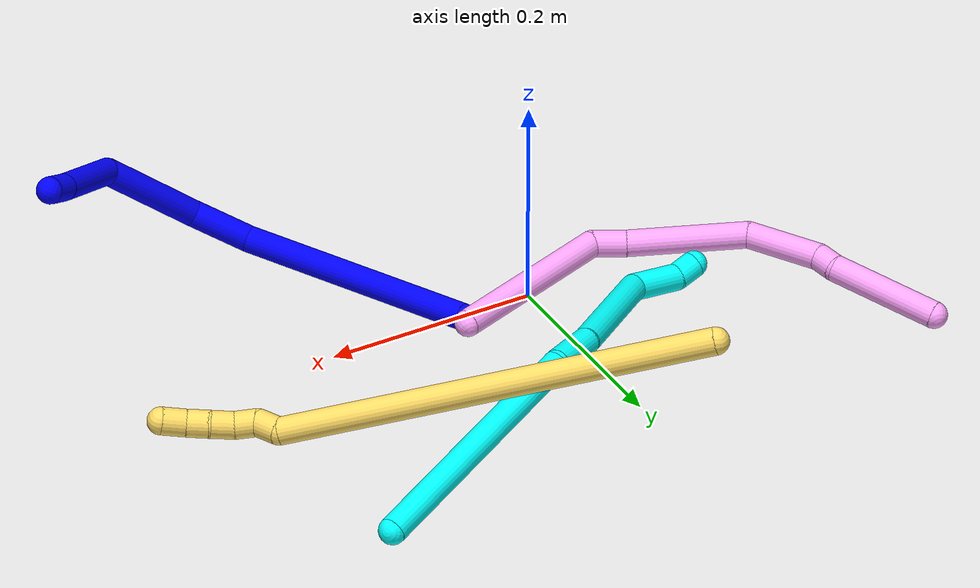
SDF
<sdf version="1.7">
 <world name="default">
  <model name="photoneo_s_sensor">
   <static>1</static>
   <pose>0 0 2 1.57079 1.57079 3.14159</pose>
   <link name="link">
    <inertial><mass>0.1</mass></inertial>
    <sensor name="sensor" type="depth">
     <update_rate>30</update_rate>
     <camera>
      <horizontal_fov>1.22</horizontal_fov>
      <image><width>1920</width><height>1200</height><format>B8G8R8</format></image>
      <clip><near>0.1</near><far>4</far></clip>
      <depth_camera><output>points</output></depth_camera>
     </camera>
     <plugin name="camera_plugin" filename="libgazebo_ros_depth_camera.so">
      <baseline>0.2</baseline>
      <alwaysOn>1</alwaysOn>
      <updateRate>0.0</updateRate>
      <cameraName>camera_ir</cameraName>
      <imageTopicName>/camera/color/image_raw</imageTopicName>
      <cameraInfoTopicName>/camera/color/camera_info</cameraInfoTopicName>
      <depthImageTopicName>/camera/depth/image_raw</depthImageTopicName>
      <depthImageCameraInfoTopicName>/camera/depth/camera_info</depthImageCameraInfoTopicName>
      <pointCloudTopicName>/camera/depth/points</pointCloudTopicName>
      <frameName>fr_optical</frameName>
      <pointCloudCutoff>0.1</pointCloudCutoff>
      <pointCloudCutoffMax>2.0</pointCloudCutoffMax>
      <distortionK1>0</distortionK1>
      <distortionK2>0</distortionK2>
      <distortionK3>0</distortionK3>
      <distortionT1>0</distortionT1>
      <distortionT2>0</distortionT2>
      <CxPrime>0</CxPrime>
      <Cx>0</Cx>
      <Cy>0</Cy>
      <focalLength>0</focalLength>
      <hackBaseline>0</hackBaseline>
     </plugin>
    </sensor>
   </link>
  </model>
  <model name="bin">
   <static>1</static>
   <link name="bottom">
    <collision name="collision-bottom">
     <pose>0 0 -0.01 0 -0 0</pose>
     <geometry><box><size>0.8 0.6 0.02</size></box></geometry>
     <surface>
      <friction><ode><mu>100</mu><mu2>100</mu2></ode></friction>
      <contact><collide_bitmask>65535</collide_bitmask></contact>
     </surface>
    </collision>
   </link>
   <link name="west_wall">
    <collision name="collision-west_wall">
     <pose>-0.41 0 0.1 0 -0 0</pose>
     <geometry><box><size>0.02 0.6 0.2</size></box></geometry>
     <surface>
      <friction><ode><mu>100</mu><mu2>100</mu2></ode></friction>
      <contact><collide_bitmask>65535</collide_bitmask></contact>
     </surface>
    </collision>
   </link>
   <link name="east_wall">
    <collision name="collision-east_wall">
     <pose>0.41 0 0.1 0 -0 0</pose>
     <geometry><box><size>0.02 0.6 0.2</size></box></geometry>
     <surface>
      <friction><ode><mu>100</mu><mu2>100</mu2></ode></friction>
      <contact><collide_bitmask>65535</collide_bitmask></contact>
     </surface>
    </collision>
   </link>
   <link name="south_wall">
    <collision name="collision-south_wall">
     <pose>0 -0.31 0.1 0 -0 0</pose>
     <geometry><box><size>0.8 0.02 0.2</size></box></geometry>
     <surface>
      <friction><ode><mu>100</mu><mu2>100</mu2></ode></friction>
      <contact><collide_bitmask>65535</collide_bitmask></contact>
     </surface>
    </collision>
   </link>
   <link name="north_wall">
    <collision name="collision-north_wall">
     <pose>0 0.31 0.1 0 -0 0</pose>
     <geometry><box><size>0.8 0.02 0.2</size></box></geometry>
     <surface>
      <friction><ode><mu>100</mu><mu2>100</mu2></ode></friction>
      <contact><collide_bitmask>65535</collide_bitmask></contact>
     </surface>
    </collision>
   </link>
  </model>
  <model name="1">
   <static>0</static>
   <link name="1">
    <collision name="collision-cylinder-e_1_1_4">
     <pose>0.036369 -0.067214 0.088964 0.647024 0.315301 0.106501</pose>
     <geometry><cylinder><radius>0.0125</radius><length>0.234564</length></cylinder></geometry>
     <surface>
      <friction><ode><mu>1.16</mu><mu2>1.16</mu2><slip1>0</slip1><slip2>0</slip2></ode></friction>
      <contact><ode><kp>1e+06</kp><kd>1</kd><max_vel>0</max_vel><min_depth>0.001</min_depth></ode></contact>
     </surface>
    </collision>
    <visual name="visual-cylinder-e_1_1_4">
     <pose>0.036369 -0.067214 0.088964 0.647024 0.315301 0.106501</pose>
     <geometry><cylinder><radius>0.0125</radius><length>0.234564</length></cylinder></geometry>
     <material><ambient>0 0 1 1</ambient></material>
    </visual>
    <collision name="collision-cylinder-e_2_4_5">
     <pose>0.072921 -0.138277 0.206439 0.134203 0.006327 0.000425</pose>
     <geometry><cylinder><radius>0.0125</radius><length>0.057541</length></cylinder></geometry>
     <surface>
      <friction><ode><mu>1.16</mu><mu2>1.16</mu2><slip1>0</slip1><slip2>0</slip2></ode></friction>
      <contact><ode><kp>1e+06</kp><kd>1</kd><max_vel>0</max_vel><min_depth>0.001</min_depth></ode></contact>
     </surface>
    </collision>
    <visual name="visual-cylinder-e_2_4_5">
     <pose>0.072921 -0.138277 0.206439 0.134203 0.006327 0.000425</pose>
     <geometry><cylinder><radius>0.0125</radius><length>0.057541</length></cylinder></geometry>
     <material><ambient>0 0 1 1</ambient></material>
    </visual>
    <collision name="collision-cylinder-e_3_5_6">
     <pose>0.063118 -0.129267 0.281799 -0.267893 -0.202698 0.027406</pose>
     <geometry><cylinder><radius>0.0125</radius><length>0.099194</length></cylinder></geometry>
     <surface>
      <friction><ode><mu>1.16</mu><mu2>1.16</mu2><slip1>0</slip1><slip2>0</slip2></ode></friction>
      <contact><ode><kp>1e+06</kp><kd>1</kd><max_vel>0</max_vel><min_depth>0.001</min_depth></ode></contact>
     </surface>
    </collision>
    <visual name="visual-cylinder-e_3_5_6">
     <pose>0.063118 -0.129267 0.281799 -0.267893 -0.202698 0.027406</pose>
     <geometry><cylinder><radius>0.0125</radius><length>0.099194</length></cylinder></geometry>
     <material><ambient>0 0 1 1</ambient></material>
    </visual>
    <collision name="collision-cylinder-e_4_6_7">
     <pose>0.050987 -0.080466 0.349741 -1.04008 -0.051474 0.029479</pose>
     <geometry><cylinder><radius>0.0125</radius><length>0.083457</length></cylinder></geometry>
     <surface>
      <friction><ode><mu>1.16</mu><mu2>1.16</mu2><slip1>0</slip1><slip2>0</slip2></ode></friction>
      <contact><ode><kp>1e+06</kp><kd>1</kd><max_vel>0</max_vel><min_depth>0.001</min_depth></ode></contact>
     </surface>
    </collision>
    <visual name="visual-cylinder-e_4_6_7">
     <pose>0.050987 -0.080466 0.349741 -1.04008 -0.051474 0.029479</pose>
     <geometry><cylinder><radius>0.0125</radius><length>0.083457</length></cylinder></geometry>
     <material><ambient>0 0 1 1</ambient></material>
    </visual>
    <collision name="collision-cylinder-e_5_7_2">
     <pose>0.047685 -0.034102 0.377858 -0.977823 -0.091643 0.048778</pose>
     <geometry><cylinder><radius>0.0125</radius><length>0.025244</length></cylinder></geometry>
     <surface>
      <friction><ode><mu>1.16</mu><mu2>1.16</mu2><slip1>0</slip1><slip2>0</slip2></ode></friction>
      <contact><ode><kp>1e+06</kp><kd>1</kd><max_vel>0</max_vel><min_depth>0.001</min_depth></ode></contact>
     </surface>
    </collision>
    <visual name="visual-cylinder-e_5_7_2">
     <pose>0.047685 -0.034102 0.377858 -0.977823 -0.091643 0.048778</pose>
     <geometry><cylinder><radius>0.0125</radius><length>0.025244</length></cylinder></geometry>
     <material><ambient>0 0 1 1</ambient></material>
    </visual>
    <collision name="collision-sphere-2">
     <pose>0.04653 -0.023679 0.384882 0 -0 0</pose>
     <geometry><sphere><radius>0.0125</radius></sphere></geometry>
     <surface>
      <friction><ode><mu>1.16</mu><mu2>1.16</mu2><slip1>0</slip1><slip2>0</slip2></ode></friction>
      <contact><ode><kp>1e+06</kp><kd>1</kd><max_vel>0</max_vel><min_depth>0.001</min_depth></ode></contact>
     </surface>
    </collision>
    <visual name="visual-sphere-2">
     <pose>0.04653 -0.023679 0.384882 0 -0 0</pose>
     <geometry><sphere><radius>0.0125</radius></sphere></geometry>
     <material><ambient>0 0 1 1</ambient></material>
    </visual>
    <collision name="collision-sphere-7">
     <pose>0.04884 -0.044526 0.370834 0 -0 0</pose>
     <geometry><sphere><radius>0.0125</radius></sphere></geometry>
     <surface>
      <friction><ode><mu>1.16</mu><mu2>1.16</mu2><slip1>0</slip1><slip2>0</slip2></ode></friction>
      <contact><ode><kp>1e+06</kp><kd>1</kd><max_vel>0</max_vel><min_depth>0.001</min_depth></ode></contact>
     </surface>
    </collision>
    <visual name="visual-sphere-7">
     <pose>0.04884 -0.044526 0.370834 0 -0 0</pose>
     <geometry><sphere><radius>0.0125</radius></sphere></geometry>
     <material><ambient>0 0 1 1</ambient></material>
    </visual>
    <collision name="collision-sphere-6">
     <pose>0.053134 -0.116407 0.328648 0 -0 0</pose>
     <geometry><sphere><radius>0.0125</radius></sphere></geometry>
     <surface>
      <friction><ode><mu>1.16</mu><mu2>1.16</mu2><slip1>0</slip1><slip2>0</slip2></ode></friction>
      <contact><ode><kp>1e+06</kp><kd>1</kd><max_vel>0</max_vel><min_depth>0.001</min_depth></ode></contact>
     </surface>
    </collision>
    <visual name="visual-sphere-6">
     <pose>0.053134 -0.116407 0.328648 0 -0 0</pose>
     <geometry><sphere><radius>0.0125</radius></sphere></geometry>
     <material><ambient>0 0 1 1</ambient></material>
    </visual>
    <collision name="collision-sphere-5">
     <pose>0.073103 -0.142127 0.23495 0 -0 0</pose>
     <geometry><sphere><radius>0.0125</radius></sphere></geometry>
     <surface>
      <friction><ode><mu>1.16</mu><mu2>1.16</mu2><slip1>0</slip1><slip2>0</slip2></ode></friction>
      <contact><ode><kp>1e+06</kp><kd>1</kd><max_vel>0</max_vel><min_depth>0.001</min_depth></ode></contact>
     </surface>
    </collision>
    <visual name="visual-sphere-5">
     <pose>0.073103 -0.142127 0.23495 0 -0 0</pose>
     <geometry><sphere><radius>0.0125</radius></sphere></geometry>
     <material><ambient>0 0 1 1</ambient></material>
    </visual>
    <collision name="collision-sphere-1">
     <geometry><sphere><radius>0.0125</radius></sphere></geometry>
     <surface>
      <friction><ode><mu>1.16</mu><mu2>1.16</mu2><slip1>0</slip1><slip2>0</slip2></ode></friction>
      <contact><ode><kp>1e+06</kp><kd>1</kd><max_vel>0</max_vel><min_depth>0.001</min_depth></ode></contact>
     </surface>
    </collision>
    <visual name="visual-sphere-1">
     <geometry><sphere><radius>0.0125</radius></sphere></geometry>
     <material><ambient>0 0 1 1</ambient></material>
    </visual>
    <collision name="collision-sphere-4">
     <pose>0.072739 -0.134428 0.177928 0 -0 0</pose>
     <geometry><sphere><radius>0.0125</radius></sphere></geometry>
     <surface>
      <friction><ode><mu>1.16</mu><mu2>1.16</mu2><slip1>0</slip1><slip2>0</slip2></ode></friction>
      <contact><ode><kp>1e+06</kp><kd>1</kd><max_vel>0</max_vel><min_depth>0.001</min_depth></ode></contact>
     </surface>
    </collision>
    <visual name="visual-sphere-4">
     <pose>0.072739 -0.134428 0.177928 0 -0 0</pose>
     <geometry><sphere><radius>0.0125</radius></sphere></geometry>
     <material><ambient>0 0 1 1</ambient></material>
    </visual>
    <inertial>
     <pose>0.048894 -0.088243 0.198853 0 -0 0</pose>
     <mass>0.5</mass>
     <inertia>
      <ixx>0.001298</ixx>
      <ixy>0</ixy>
      <ixz>0</ixz>
      <iyy>0.001122</iyy>
      <iyz>0</iyz>
      <izz>0.000269</izz>
     </inertia>
    </inertial>
   </link>
   <pose>0.076427 0.014571 0.011491 0.19685 1.10869 -0.287087</pose>
  </model>
  <model name="3">
   <static>0</static>
   <link name="3">
    <collision name="collision-cylinder-e_1_1_4">
     <pose>-0.061755 -0.039916 -0.091901 2.73184 -0.552353 -1.87631</pose>
     <geometry><cylinder><radius>0.0125</radius><length>0.235395</length></cylinder></geometry>
     <surface>
      <friction><ode><mu>1.16</mu><mu2>1.16</mu2><slip1>0</slip1><slip2>0</slip2></ode></friction>
      <contact><ode><kp>1e+06</kp><kd>1</kd><max_vel>0</max_vel><min_depth>0.001</min_depth></ode></contact>
     </surface>
    </collision>
    <visual name="visual-cylinder-e_1_1_4">
     <pose>-0.061755 -0.039916 -0.091901 2.73184 -0.552353 -1.87631</pose>
     <geometry><cylinder><radius>0.0125</radius><length>0.235395</length></cylinder></geometry>
     <material><ambient>0.003922 1 0.996078 1</ambient></material>
    </visual>
    <collision name="collision-cylinder-e_2_4_5">
     <pose>-0.129734 -0.084429 -0.209831 2.96679 -0.231257 -1.84893</pose>
     <geometry><cylinder><radius>0.0125</radius><length>0.05431</length></cylinder></geometry>
     <surface>
      <friction><ode><mu>1.16</mu><mu2>1.16</mu2><slip1>0</slip1><slip2>0</slip2></ode></friction>
      <contact><ode><kp>1e+06</kp><kd>1</kd><max_vel>0</max_vel><min_depth>0.001</min_depth></ode></contact>
     </surface>
    </collision>
    <visual name="visual-cylinder-e_2_4_5">
     <pose>-0.129734 -0.084429 -0.209831 2.96679 -0.231257 -1.84893</pose>
     <geometry><cylinder><radius>0.0125</radius><length>0.05431</length></cylinder></geometry>
     <material><ambient>0.003922 1 0.996078 1</ambient></material>
    </visual>
    <collision name="collision-cylinder-e_3_5_6">
     <pose>-0.14028 -0.104878 -0.304176 2.91359 -0.061549 -0.525304</pose>
     <geometry><cylinder><radius>0.0125</radius><length>0.140527</length></cylinder></geometry>
     <surface>
      <friction><ode><mu>1.16</mu><mu2>1.16</mu2><slip1>0</slip1><slip2>0</slip2></ode></friction>
      <contact><ode><kp>1e+06</kp><kd>1</kd><max_vel>0</max_vel><min_depth>0.001</min_depth></ode></contact>
     </surface>
    </collision>
    <visual name="visual-cylinder-e_3_5_6">
     <pose>-0.14028 -0.104878 -0.304176 2.91359 -0.061549 -0.525304</pose>
     <geometry><cylinder><radius>0.0125</radius><length>0.140527</length></cylinder></geometry>
     <material><ambient>0.003922 1 0.996078 1</ambient></material>
    </visual>
    <collision name="collision-cylinder-e_4_6_7">
     <pose>-0.158364 -0.11792 -0.392237 -3.00028 -0.604012 2.69482</pose>
     <geometry><cylinder><radius>0.0125</radius><length>0.048465</length></cylinder></geometry>
     <surface>
      <friction><ode><mu>1.16</mu><mu2>1.16</mu2><slip1>0</slip1><slip2>0</slip2></ode></friction>
      <contact><ode><kp>1e+06</kp><kd>1</kd><max_vel>0</max_vel><min_depth>0.001</min_depth></ode></contact>
     </surface>
    </collision>
    <visual name="visual-cylinder-e_4_6_7">
     <pose>-0.158364 -0.11792 -0.392237 -3.00028 -0.604012 2.69482</pose>
     <geometry><cylinder><radius>0.0125</radius><length>0.048465</length></cylinder></geometry>
     <material><ambient>0.003922 1 0.996078 1</ambient></material>
    </visual>
    <collision name="collision-cylinder-e_5_7_2">
     <pose>-0.17966 -0.117592 -0.419094 2.80598 -0.785492 -2.36526</pose>
     <geometry><cylinder><radius>0.0125</radius><length>0.021303</length></cylinder></geometry>
     <surface>
      <friction><ode><mu>1.16</mu><mu2>1.16</mu2><slip1>0</slip1><slip2>0</slip2></ode></friction>
      <contact><ode><kp>1e+06</kp><kd>1</kd><max_vel>0</max_vel><min_depth>0.001</min_depth></ode></contact>
     </surface>
    </collision>
    <visual name="visual-cylinder-e_5_7_2">
     <pose>-0.17966 -0.117592 -0.419094 2.80598 -0.785492 -2.36526</pose>
     <geometry><cylinder><radius>0.0125</radius><length>0.021303</length></cylinder></geometry>
     <material><ambient>0.003922 1 0.996078 1</ambient></material>
    </visual>
    <collision name="collision-sphere-2">
     <pose>-0.187192 -0.120072 -0.426205 0 -0 0</pose>
     <geometry><sphere><radius>0.0125</radius></sphere></geometry>
     <surface>
      <friction><ode><mu>1.16</mu><mu2>1.16</mu2><slip1>0</slip1><slip2>0</slip2></ode></friction>
      <contact><ode><kp>1e+06</kp><kd>1</kd><max_vel>0</max_vel><min_depth>0.001</min_depth></ode></contact>
     </surface>
    </collision>
    <visual name="visual-sphere-2">
     <pose>-0.187192 -0.120072 -0.426205 0 -0 0</pose>
     <geometry><sphere><radius>0.0125</radius></sphere></geometry>
     <material><ambient>0.003922 1 0.996078 1</ambient></material>
    </visual>
    <collision name="collision-sphere-7">
     <pose>-0.172127 -0.115111 -0.411983 0 -0 0</pose>
     <geometry><sphere><radius>0.0125</radius></sphere></geometry>
     <surface>
      <friction><ode><mu>1.16</mu><mu2>1.16</mu2><slip1>0</slip1><slip2>0</slip2></ode></friction>
      <contact><ode><kp>1e+06</kp><kd>1</kd><max_vel>0</max_vel><min_depth>0.001</min_depth></ode></contact>
     </surface>
    </collision>
    <visual name="visual-sphere-7">
     <pose>-0.172127 -0.115111 -0.411983 0 -0 0</pose>
     <geometry><sphere><radius>0.0125</radius></sphere></geometry>
     <material><ambient>0.003922 1 0.996078 1</ambient></material>
    </visual>
    <collision name="collision-sphere-6">
     <pose>-0.144602 -0.12073 -0.372491 0 -0 0</pose>
     <geometry><sphere><radius>0.0125</radius></sphere></geometry>
     <surface>
      <friction><ode><mu>1.16</mu><mu2>1.16</mu2><slip1>0</slip1><slip2>0</slip2></ode></friction>
      <contact><ode><kp>1e+06</kp><kd>1</kd><max_vel>0</max_vel><min_depth>0.001</min_depth></ode></contact>
     </surface>
    </collision>
    <visual name="visual-sphere-6">
     <pose>-0.144602 -0.12073 -0.372491 0 -0 0</pose>
     <geometry><sphere><radius>0.0125</radius></sphere></geometry>
     <material><ambient>0.003922 1 0.996078 1</ambient></material>
    </visual>
    <collision name="collision-sphere-5">
     <pose>-0.135958 -0.089026 -0.23586 0 -0 0</pose>
     <geometry><sphere><radius>0.0125</radius></sphere></geometry>
     <surface>
      <friction><ode><mu>1.16</mu><mu2>1.16</mu2><slip1>0</slip1><slip2>0</slip2></ode></friction>
      <contact><ode><kp>1e+06</kp><kd>1</kd><max_vel>0</max_vel><min_depth>0.001</min_depth></ode></contact>
     </surface>
    </collision>
    <visual name="visual-sphere-5">
     <pose>-0.135958 -0.089026 -0.23586 0 -0 0</pose>
     <geometry><sphere><radius>0.0125</radius></sphere></geometry>
     <material><ambient>0.003922 1 0.996078 1</ambient></material>
    </visual>
    <collision name="collision-sphere-1">
     <geometry><sphere><radius>0.0125</radius></sphere></geometry>
     <surface>
      <friction><ode><mu>1.16</mu><mu2>1.16</mu2><slip1>0</slip1><slip2>0</slip2></ode></friction>
      <contact><ode><kp>1e+06</kp><kd>1</kd><max_vel>0</max_vel><min_depth>0.001</min_depth></ode></contact>
     </surface>
    </collision>
    <visual name="visual-sphere-1">
     <geometry><sphere><radius>0.0125</radius></sphere></geometry>
     <material><ambient>0.003922 1 0.996078 1</ambient></material>
    </visual>
    <collision name="collision-sphere-4">
     <pose>-0.12351 -0.079832 -0.183801 0 -0 0</pose>
     <geometry><sphere><radius>0.0125</radius></sphere></geometry>
     <surface>
      <friction><ode><mu>1.16</mu><mu2>1.16</mu2><slip1>0</slip1><slip2>0</slip2></ode></friction>
      <contact><ode><kp>1e+06</kp><kd>1</kd><max_vel>0</max_vel><min_depth>0.001</min_depth></ode></contact>
     </surface>
    </collision>
    <visual name="visual-sphere-4">
     <pose>-0.12351 -0.079832 -0.183801 0 -0 0</pose>
     <geometry><sphere><radius>0.0125</radius></sphere></geometry>
     <material><ambient>0.003922 1 0.996078 1</ambient></material>
    </visual>
    <inertial>
     <pose>-0.105596 -0.073879 -0.207423 0 -0 0</pose>
     <mass>0.5</mass>
     <inertia>
      <ixx>-0.001124</ixx>
      <ixy>0</ixy>
      <ixz>0</ixz>
      <iyy>-0.000689</iyy>
      <iyz>0</iyz>
      <izz>0.000994</izz>
     </inertia>
    </inertial>
   </link>
   <pose>0.283767 0.266514 0.011753 -1.04682 0.552618 -0.637703</pose>
  </model>
  <model name="4">
   <static>0</static>
   <link name="4">
    <collision name="collision-cylinder-e_1_1_4">
     <pose>-0.022665 0.070218 -0.03439 -2.02622 -0.282144 0.447739</pose>
     <geometry><cylinder><radius>0.0125</radius><length>0.162811</length></cylinder></geometry>
     <surface>
      <friction><ode><mu>1.16</mu><mu2>1.16</mu2><slip1>0</slip1><slip2>0</slip2></ode></friction>
      <contact><ode><kp>1e+06</kp><kd>1</kd><max_vel>0</max_vel><min_depth>0.001</min_depth></ode></contact>
     </surface>
    </collision>
    <visual name="visual-cylinder-e_1_1_4">
     <pose>-0.022665 0.070218 -0.03439 -2.02622 -0.282144 0.447739</pose>
     <geometry><cylinder><radius>0.0125</radius><length>0.162811</length></cylinder></geometry>
     <material><ambient>1 0.65098 0.996078 1</ambient></material>
    </visual>
    <collision name="collision-cylinder-e_2_4_5">
     <pose>-0.052499 0.153753 -0.064128 -1.23476 -0.470219 0.336903</pose>
     <geometry><cylinder><radius>0.0125</radius><length>0.031648</length></cylinder></geometry>
     <surface>
      <friction><ode><mu>1.16</mu><mu2>1.16</mu2><slip1>0</slip1><slip2>0</slip2></ode></friction>
      <contact><ode><kp>1e+06</kp><kd>1</kd><max_vel>0</max_vel><min_depth>0.001</min_depth></ode></contact>
     </surface>
    </collision>
    <visual name="visual-cylinder-e_2_4_5">
     <pose>-0.052499 0.153753 -0.064128 -1.23476 -0.470219 0.336903</pose>
     <geometry><cylinder><radius>0.0125</radius><length>0.031648</length></cylinder></geometry>
     <material><ambient>1 0.65098 0.996078 1</ambient></material>
    </visual>
    <collision name="collision-cylinder-e_3_5_6">
     <pose>-0.089086 0.212384 -0.044056 -1.24279 -0.551082 0.399483</pose>
     <geometry><cylinder><radius>0.0125</radius><length>0.112367</length></cylinder></geometry>
     <surface>
      <friction><ode><mu>1.16</mu><mu2>1.16</mu2><slip1>0</slip1><slip2>0</slip2></ode></friction>
      <contact><ode><kp>1e+06</kp><kd>1</kd><max_vel>0</max_vel><min_depth>0.001</min_depth></ode></contact>
     </surface>
    </collision>
    <visual name="visual-cylinder-e_3_5_6">
     <pose>-0.089086 0.212384 -0.044056 -1.24279 -0.551082 0.399483</pose>
     <geometry><cylinder><radius>0.0125</radius><length>0.112367</length></cylinder></geometry>
     <material><ambient>1 0.65098 0.996078 1</ambient></material>
    </visual>
    <collision name="collision-cylinder-e_4_6_7">
     <pose>-0.134336 0.276962 -0.003679 -0.65736 -0.465383 0.161297</pose>
     <geometry><cylinder><radius>0.0125</radius><length>0.070555</length></cylinder></geometry>
     <surface>
      <friction><ode><mu>1.16</mu><mu2>1.16</mu2><slip1>0</slip1><slip2>0</slip2></ode></friction>
      <contact><ode><kp>1e+06</kp><kd>1</kd><max_vel>0</max_vel><min_depth>0.001</min_depth></ode></contact>
     </surface>
    </collision>
    <visual name="visual-cylinder-e_4_6_7">
     <pose>-0.134336 0.276962 -0.003679 -0.65736 -0.465383 0.161297</pose>
     <geometry><cylinder><radius>0.0125</radius><length>0.070555</length></cylinder></geometry>
     <material><ambient>1 0.65098 0.996078 1</ambient></material>
    </visual>
    <collision name="collision-cylinder-e_5_7_8">
     <pose>-0.153499 0.298958 0.030549 -0.28664 -0.331931 0.048336</pose>
     <geometry><cylinder><radius>0.0125</radius><length>0.020451</length></cylinder></geometry>
     <surface>
      <friction><ode><mu>1.16</mu><mu2>1.16</mu2><slip1>0</slip1><slip2>0</slip2></ode></friction>
      <contact><ode><kp>1e+06</kp><kd>1</kd><max_vel>0</max_vel><min_depth>0.001</min_depth></ode></contact>
     </surface>
    </collision>
    <visual name="visual-cylinder-e_5_7_8">
     <pose>-0.153499 0.298958 0.030549 -0.28664 -0.331931 0.048336</pose>
     <geometry><cylinder><radius>0.0125</radius><length>0.020451</length></cylinder></geometry>
     <material><ambient>1 0.65098 0.996078 1</ambient></material>
    </visual>
    <collision name="collision-cylinder-e_6_8_2">
     <pose>-0.173662 0.329434 0.079277 -0.612838 -0.335749 0.107132</pose>
     <geometry><cylinder><radius>0.0125</radius><length>0.102169</length></cylinder></geometry>
     <surface>
      <friction><ode><mu>1.16</mu><mu2>1.16</mu2><slip1>0</slip1><slip2>0</slip2></ode></friction>
      <contact><ode><kp>1e+06</kp><kd>1</kd><max_vel>0</max_vel><min_depth>0.001</min_depth></ode></contact>
     </surface>
    </collision>
    <visual name="visual-cylinder-e_6_8_2">
     <pose>-0.173662 0.329434 0.079277 -0.612838 -0.335749 0.107132</pose>
     <geometry><cylinder><radius>0.0125</radius><length>0.102169</length></cylinder></geometry>
     <material><ambient>1 0.65098 0.996078 1</ambient></material>
    </visual>
    <collision name="collision-sphere-2">
     <pose>-0.190494 0.357176 0.118731 0 -0 0</pose>
     <geometry><sphere><radius>0.0125</radius></sphere></geometry>
     <surface>
      <friction><ode><mu>1.16</mu><mu2>1.16</mu2><slip1>0</slip1><slip2>0</slip2></ode></friction>
      <contact><ode><kp>1e+06</kp><kd>1</kd><max_vel>0</max_vel><min_depth>0.001</min_depth></ode></contact>
     </surface>
    </collision>
    <visual name="visual-sphere-2">
     <pose>-0.190494 0.357176 0.118731 0 -0 0</pose>
     <geometry><sphere><radius>0.0125</radius></sphere></geometry>
     <material><ambient>1 0.65098 0.996078 1</ambient></material>
    </visual>
    <collision name="collision-sphere-4">
     <pose>-0.045329 0.140435 -0.068779 0 -0 0</pose>
     <geometry><sphere><radius>0.0125</radius></sphere></geometry>
     <surface>
      <friction><ode><mu>1.16</mu><mu2>1.16</mu2><slip1>0</slip1><slip2>0</slip2></ode></friction>
      <contact><ode><kp>1e+06</kp><kd>1</kd><max_vel>0</max_vel><min_depth>0.001</min_depth></ode></contact>
     </surface>
    </collision>
    <visual name="visual-sphere-4">
     <pose>-0.045329 0.140435 -0.068779 0 -0 0</pose>
     <geometry><sphere><radius>0.0125</radius></sphere></geometry>
     <material><ambient>1 0.65098 0.996078 1</ambient></material>
    </visual>
    <collision name="collision-sphere-1">
     <geometry><sphere><radius>0.0125</radius></sphere></geometry>
     <surface>
      <friction><ode><mu>1.16</mu><mu2>1.16</mu2><slip1>0</slip1><slip2>0</slip2></ode></friction>
      <contact><ode><kp>1e+06</kp><kd>1</kd><max_vel>0</max_vel><min_depth>0.001</min_depth></ode></contact>
     </surface>
    </collision>
    <visual name="visual-sphere-1">
     <geometry><sphere><radius>0.0125</radius></sphere></geometry>
     <material><ambient>1 0.65098 0.996078 1</ambient></material>
    </visual>
    <collision name="collision-sphere-8">
     <pose>-0.156831 0.301691 0.039822 0 -0 0</pose>
     <geometry><sphere><radius>0.0125</radius></sphere></geometry>
     <surface>
      <friction><ode><mu>1.16</mu><mu2>1.16</mu2><slip1>0</slip1><slip2>0</slip2></ode></friction>
      <contact><ode><kp>1e+06</kp><kd>1</kd><max_vel>0</max_vel><min_depth>0.001</min_depth></ode></contact>
     </surface>
    </collision>
    <visual name="visual-sphere-8">
     <pose>-0.156831 0.301691 0.039822 0 -0 0</pose>
     <geometry><sphere><radius>0.0125</radius></sphere></geometry>
     <material><ambient>1 0.65098 0.996078 1</ambient></material>
    </visual>
    <collision name="collision-sphere-5">
     <pose>-0.059668 0.16707 -0.059476 0 -0 0</pose>
     <geometry><sphere><radius>0.0125</radius></sphere></geometry>
     <surface>
      <friction><ode><mu>1.16</mu><mu2>1.16</mu2><slip1>0</slip1><slip2>0</slip2></ode></friction>
      <contact><ode><kp>1e+06</kp><kd>1</kd><max_vel>0</max_vel><min_depth>0.001</min_depth></ode></contact>
     </surface>
    </collision>
    <visual name="visual-sphere-5">
     <pose>-0.059668 0.16707 -0.059476 0 -0 0</pose>
     <geometry><sphere><radius>0.0125</radius></sphere></geometry>
     <material><ambient>1 0.65098 0.996078 1</ambient></material>
    </visual>
    <collision name="collision-sphere-6">
     <pose>-0.118505 0.257699 -0.028635 0 -0 0</pose>
     <geometry><sphere><radius>0.0125</radius></sphere></geometry>
     <surface>
      <friction><ode><mu>1.16</mu><mu2>1.16</mu2><slip1>0</slip1><slip2>0</slip2></ode></friction>
      <contact><ode><kp>1e+06</kp><kd>1</kd><max_vel>0</max_vel><min_depth>0.001</min_depth></ode></contact>
     </surface>
    </collision>
    <visual name="visual-sphere-6">
     <pose>-0.118505 0.257699 -0.028635 0 -0 0</pose>
     <geometry><sphere><radius>0.0125</radius></sphere></geometry>
     <material><ambient>1 0.65098 0.996078 1</ambient></material>
    </visual>
    <collision name="collision-sphere-7">
     <pose>-0.150167 0.296225 0.021276 0 -0 0</pose>
     <geometry><sphere><radius>0.0125</radius></sphere></geometry>
     <surface>
      <friction><ode><mu>1.16</mu><mu2>1.16</mu2><slip1>0</slip1><slip2>0</slip2></ode></friction>
      <contact><ode><kp>1e+06</kp><kd>1</kd><max_vel>0</max_vel><min_depth>0.001</min_depth></ode></contact>
     </surface>
    </collision>
    <visual name="visual-sphere-7">
     <pose>-0.150167 0.296225 0.021276 0 -0 0</pose>
     <geometry><sphere><radius>0.0125</radius></sphere></geometry>
     <material><ambient>1 0.65098 0.996078 1</ambient></material>
    </visual>
    <inertial>
     <pose>-0.091444 0.198952 -0.008228 0 -0 0</pose>
     <mass>0.5</mass>
     <inertia>
      <ixx>0.000726</ixx>
      <ixy>0</ixy>
      <ixz>0</ixz>
      <iyy>0.000298</iyy>
      <iyz>0</iyz>
      <izz>-0.000264</izz>
     </inertia>
    </inertial>
   </link>
   <pose>0.084713 0.039985 0.022684 -2.27248 1.0482 -0.786511</pose>
  </model>
  <model name="5">
   <static>0</static>
   <link name="5">
    <collision name="collision-cylinder-e_1_1_4">
     <pose>0.178969 -0.033009 -0.07178 2.71057 1.15507 2.49342</pose>
     <geometry><cylinder><radius>0.0125</radius><length>0.391263</length></cylinder></geometry>
     <surface>
      <friction><ode><mu>1.16</mu><mu2>1.16</mu2><slip1>0</slip1><slip2>0</slip2></ode></friction>
      <contact><ode><kp>1e+06</kp><kd>1</kd><max_vel>0</max_vel><min_depth>0.001</min_depth></ode></contact>
     </surface>
    </collision>
    <visual name="visual-cylinder-e_1_1_4">
     <pose>0.178969 -0.033009 -0.07178 2.71057 1.15507 2.49342</pose>
     <geometry><cylinder><radius>0.0125</radius><length>0.391263</length></cylinder></geometry>
     <material><ambient>1 0.858824 0.4 1</ambient></material>
    </visual>
    <collision name="collision-cylinder-e_2_4_5">
     <pose>0.365777 -0.074226 -0.145987 1.85825 0.741532 0.959519</pose>
     <geometry><cylinder><radius>0.0125</radius><length>0.023214</length></cylinder></geometry>
     <surface>
      <friction><ode><mu>1.16</mu><mu2>1.16</mu2><slip1>0</slip1><slip2>0</slip2></ode></friction>
      <contact><ode><kp>1e+06</kp><kd>1</kd><max_vel>0</max_vel><min_depth>0.001</min_depth></ode></contact>
     </surface>
    </collision>
    <visual name="visual-cylinder-e_2_4_5">
     <pose>0.365777 -0.074226 -0.145987 1.85825 0.741532 0.959519</pose>
     <geometry><cylinder><radius>0.0125</radius><length>0.023214</length></cylinder></geometry>
     <material><ambient>1 0.858824 0.4 1</ambient></material>
    </visual>
    <collision name="collision-cylinder-e_3_5_6">
     <pose>0.3835 -0.083936 -0.150687 2.55809 1.30175 2.39036</pose>
     <geometry><cylinder><radius>0.0125</radius><length>0.020503</length></cylinder></geometry>
     <surface>
      <friction><ode><mu>1.16</mu><mu2>1.16</mu2><slip1>0</slip1><slip2>0</slip2></ode></friction>
      <contact><ode><kp>1e+06</kp><kd>1</kd><max_vel>0</max_vel><min_depth>0.001</min_depth></ode></contact>
     </surface>
    </collision>
    <visual name="visual-cylinder-e_3_5_6">
     <pose>0.3835 -0.083936 -0.150687 2.55809 1.30175 2.39036</pose>
     <geometry><cylinder><radius>0.0125</radius><length>0.020503</length></cylinder></geometry>
     <material><ambient>1 0.858824 0.4 1</ambient></material>
    </visual>
    <collision name="collision-cylinder-e_4_6_7">
     <pose>0.403807 -0.08741 -0.153094 1.63799 1.38333 1.44976</pose>
     <geometry><cylinder><radius>0.0125</radius><length>0.021221</length></cylinder></geometry>
     <surface>
      <friction><ode><mu>1.16</mu><mu2>1.16</mu2><slip1>0</slip1><slip2>0</slip2></ode></friction>
      <contact><ode><kp>1e+06</kp><kd>1</kd><max_vel>0</max_vel><min_depth>0.001</min_depth></ode></contact>
     </surface>
    </collision>
    <visual name="visual-cylinder-e_4_6_7">
     <pose>0.403807 -0.08741 -0.153094 1.63799 1.38333 1.44976</pose>
     <geometry><cylinder><radius>0.0125</radius><length>0.021221</length></cylinder></geometry>
     <material><ambient>1 0.858824 0.4 1</ambient></material>
    </visual>
    <collision name="collision-cylinder-e_5_7_8">
     <pose>0.424087 -0.092609 -0.154713 2.00261 1.22491 1.66356</pose>
     <geometry><cylinder><radius>0.0125</radius><length>0.020951</length></cylinder></geometry>
     <surface>
      <friction><ode><mu>1.16</mu><mu2>1.16</mu2><slip1>0</slip1><slip2>0</slip2></ode></friction>
      <contact><ode><kp>1e+06</kp><kd>1</kd><max_vel>0</max_vel><min_depth>0.001</min_depth></ode></contact>
     </surface>
    </collision>
    <visual name="visual-cylinder-e_5_7_8">
     <pose>0.424087 -0.092609 -0.154713 2.00261 1.22491 1.66356</pose>
     <geometry><cylinder><radius>0.0125</radius><length>0.020951</length></cylinder></geometry>
     <material><ambient>1 0.858824 0.4 1</ambient></material>
    </visual>
    <collision name="collision-cylinder-e_6_8_2">
     <pose>0.445181 -0.09762 -0.1552 1.06024 1.39064 0.909574</pose>
     <geometry><cylinder><radius>0.0125</radius><length>0.022847</length></cylinder></geometry>
     <surface>
      <friction><ode><mu>1.16</mu><mu2>1.16</mu2><slip1>0</slip1><slip2>0</slip2></ode></friction>
      <contact><ode><kp>1e+06</kp><kd>1</kd><max_vel>0</max_vel><min_depth>0.001</min_depth></ode></contact>
     </surface>
    </collision>
    <visual name="visual-cylinder-e_6_8_2">
     <pose>0.445181 -0.09762 -0.1552 1.06024 1.39064 0.909574</pose>
     <geometry><cylinder><radius>0.0125</radius><length>0.022847</length></cylinder></geometry>
     <material><ambient>1 0.858824 0.4 1</ambient></material>
    </visual>
    <collision name="collision-sphere-2">
     <pose>0.456419 -0.099406 -0.154199 0 -0 0</pose>
     <geometry><sphere><radius>0.0125</radius></sphere></geometry>
     <surface>
      <friction><ode><mu>1.16</mu><mu2>1.16</mu2><slip1>0</slip1><slip2>0</slip2></ode></friction>
      <contact><ode><kp>1e+06</kp><kd>1</kd><max_vel>0</max_vel><min_depth>0.001</min_depth></ode></contact>
     </surface>
    </collision>
    <visual name="visual-sphere-2">
     <pose>0.456419 -0.099406 -0.154199 0 -0 0</pose>
     <geometry><sphere><radius>0.0125</radius></sphere></geometry>
     <material><ambient>1 0.858824 0.4 1</ambient></material>
    </visual>
    <collision name="collision-sphere-4">
     <pose>0.357938 -0.066018 -0.14356 0 -0 0</pose>
     <geometry><sphere><radius>0.0125</radius></sphere></geometry>
     <surface>
      <friction><ode><mu>1.16</mu><mu2>1.16</mu2><slip1>0</slip1><slip2>0</slip2></ode></friction>
      <contact><ode><kp>1e+06</kp><kd>1</kd><max_vel>0</max_vel><min_depth>0.001</min_depth></ode></contact>
     </surface>
    </collision>
    <visual name="visual-sphere-4">
     <pose>0.357938 -0.066018 -0.14356 0 -0 0</pose>
     <geometry><sphere><radius>0.0125</radius></sphere></geometry>
     <material><ambient>1 0.858824 0.4 1</ambient></material>
    </visual>
    <collision name="collision-sphere-1">
     <geometry><sphere><radius>0.0125</radius></sphere></geometry>
     <surface>
      <friction><ode><mu>1.16</mu><mu2>1.16</mu2><slip1>0</slip1><slip2>0</slip2></ode></friction>
      <contact><ode><kp>1e+06</kp><kd>1</kd><max_vel>0</max_vel><min_depth>0.001</min_depth></ode></contact>
     </surface>
    </collision>
    <visual name="visual-sphere-1">
     <geometry><sphere><radius>0.0125</radius></sphere></geometry>
     <material><ambient>1 0.858824 0.4 1</ambient></material>
    </visual>
    <collision name="collision-sphere-8">
     <pose>0.433942 -0.095834 -0.1562 0 -0 0</pose>
     <geometry><sphere><radius>0.0125</radius></sphere></geometry>
     <surface>
      <friction><ode><mu>1.16</mu><mu2>1.16</mu2><slip1>0</slip1><slip2>0</slip2></ode></friction>
      <contact><ode><kp>1e+06</kp><kd>1</kd><max_vel>0</max_vel><min_depth>0.001</min_depth></ode></contact>
     </surface>
    </collision>
    <visual name="visual-sphere-8">
     <pose>0.433942 -0.095834 -0.1562 0 -0 0</pose>
     <geometry><sphere><radius>0.0125</radius></sphere></geometry>
     <material><ambient>1 0.858824 0.4 1</ambient></material>
    </visual>
    <collision name="collision-sphere-5">
     <pose>0.373617 -0.082434 -0.148413 0 -0 0</pose>
     <geometry><sphere><radius>0.0125</radius></sphere></geometry>
     <surface>
      <friction><ode><mu>1.16</mu><mu2>1.16</mu2><slip1>0</slip1><slip2>0</slip2></ode></friction>
      <contact><ode><kp>1e+06</kp><kd>1</kd><max_vel>0</max_vel><min_depth>0.001</min_depth></ode></contact>
     </surface>
    </collision>
    <visual name="visual-sphere-5">
     <pose>0.373617 -0.082434 -0.148413 0 -0 0</pose>
     <geometry><sphere><radius>0.0125</radius></sphere></geometry>
     <material><ambient>1 0.858824 0.4 1</ambient></material>
    </visual>
    <collision name="collision-sphere-6">
     <pose>0.393383 -0.085437 -0.152962 0 -0 0</pose>
     <geometry><sphere><radius>0.0125</radius></sphere></geometry>
     <surface>
      <friction><ode><mu>1.16</mu><mu2>1.16</mu2><slip1>0</slip1><slip2>0</slip2></ode></friction>
      <contact><ode><kp>1e+06</kp><kd>1</kd><max_vel>0</max_vel><min_depth>0.001</min_depth></ode></contact>
     </surface>
    </collision>
    <visual name="visual-sphere-6">
     <pose>0.393383 -0.085437 -0.152962 0 -0 0</pose>
     <geometry><sphere><radius>0.0125</radius></sphere></geometry>
     <material><ambient>1 0.858824 0.4 1</ambient></material>
    </visual>
    <collision name="collision-sphere-7">
     <pose>0.414232 -0.089383 -0.153227 0 -0 0</pose>
     <geometry><sphere><radius>0.0125</radius></sphere></geometry>
     <surface>
      <friction><ode><mu>1.16</mu><mu2>1.16</mu2><slip1>0</slip1><slip2>0</slip2></ode></friction>
      <contact><ode><kp>1e+06</kp><kd>1</kd><max_vel>0</max_vel><min_depth>0.001</min_depth></ode></contact>
     </surface>
    </collision>
    <visual name="visual-sphere-7">
     <pose>0.414232 -0.089383 -0.153227 0 -0 0</pose>
     <geometry><sphere><radius>0.0125</radius></sphere></geometry>
     <material><ambient>1 0.858824 0.4 1</ambient></material>
    </visual>
    <inertial>
     <pose>0.228007 -0.044769 -0.089199 0 -0 0</pose>
     <mass>0.5</mass>
     <inertia>
      <ixx>-0.000352</ixx>
      <ixy>0</ixy>
      <ixz>0</ixz>
      <iyy>0.006004</iyy>
      <iyz>0</iyz>
      <izz>-0.003753</izz>
     </inertia>
    </inertial>
   </link>
   <pose>-0.020502 0.288501 0.11729 -0.244919 -0.05586 -0.274921</pose>
  </model>
 </world>
</sdf>
